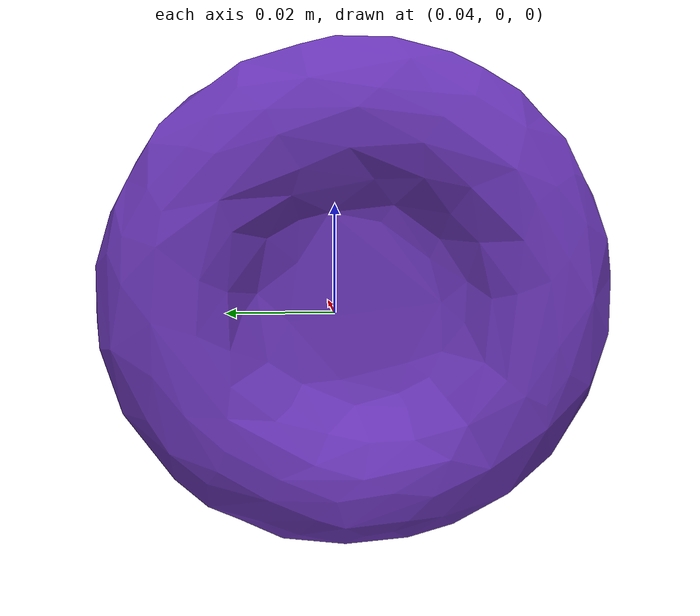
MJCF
<mujoco model="top_watertight_tiny">
  <default>
    <default group="2" type="mesh" contype="0" conaffinity="0">
      <geom group="2" type="mesh" contype="0" conaffinity="0"/>
    </default>
    <default group="3" type="mesh">
      <geom group="3" type="mesh"/>
    </default>
  </default>
  <asset>
    <mesh file="top_watertight_tiny.obj"/>
    <mesh file="top_watertight_tiny_collision_0.obj"/>
    <mesh file="top_watertight_tiny_collision_1.obj"/>
    <mesh file="top_watertight_tiny_collision_2.obj"/>
    <mesh file="top_watertight_tiny_collision_3.obj"/>
    <mesh file="top_watertight_tiny_collision_4.obj"/>
    <mesh file="top_watertight_tiny_collision_5.obj"/>
    <mesh file="top_watertight_tiny_collision_6.obj"/>
    <mesh file="top_watertight_tiny_collision_7.obj"/>
    <mesh file="top_watertight_tiny_collision_8.obj"/>
    <mesh file="top_watertight_tiny_collision_9.obj"/>
    <mesh file="top_watertight_tiny_collision_10.obj"/>
    <mesh file="top_watertight_tiny_collision_11.obj"/>
    <mesh file="top_watertight_tiny_collision_12.obj"/>
    <mesh file="top_watertight_tiny_collision_13.obj"/>
    <mesh file="top_watertight_tiny_collision_14.obj"/>
    <mesh file="top_watertight_tiny_collision_15.obj"/>
    <mesh file="top_watertight_tiny_collision_16.obj"/>
    <mesh file="top_watertight_tiny_collision_17.obj"/>
    <mesh file="top_watertight_tiny_collision_18.obj"/>
    <mesh file="top_watertight_tiny_collision_19.obj"/>
    <mesh file="top_watertight_tiny_collision_20.obj"/>
    <mesh file="top_watertight_tiny_collision_21.obj"/>
    <mesh file="top_watertight_tiny_collision_22.obj"/>
    <mesh file="top_watertight_tiny_collision_23.obj"/>
    <mesh file="top_watertight_tiny_collision_24.obj"/>
    <mesh file="top_watertight_tiny_collision_25.obj"/>
    <mesh file="top_watertight_tiny_collision_26.obj"/>
    <mesh file="top_watertight_tiny_collision_27.obj"/>
    <mesh file="top_watertight_tiny_collision_28.obj"/>
    <mesh file="top_watertight_tiny_collision_29.obj"/>
    <mesh file="top_watertight_tiny_collision_30.obj"/>
    <mesh file="top_watertight_tiny_collision_31.obj"/>
    <mesh file="top_watertight_tiny_collision_32.obj"/>
    <mesh file="top_watertight_tiny_collision_33.obj"/>
    <mesh file="top_watertight_tiny_collision_34.obj"/>
    <mesh file="top_watertight_tiny_collision_35.obj"/>
    <mesh file="top_watertight_tiny_collision_36.obj"/>
    <mesh file="top_watertight_tiny_collision_37.obj"/>
    <mesh file="top_watertight_tiny_collision_38.obj"/>
    <mesh file="top_watertight_tiny_collision_39.obj"/>
    <mesh file="top_watertight_tiny_collision_40.obj"/>
    <mesh file="top_watertight_tiny_collision_41.obj"/>
    <mesh file="top_watertight_tiny_collision_42.obj"/>
    <mesh file="top_watertight_tiny_collision_43.obj"/>
    <mesh file="top_watertight_tiny_collision_44.obj"/>
    <mesh file="top_watertight_tiny_collision_45.obj"/>
    <mesh file="top_watertight_tiny_collision_46.obj"/>
    <mesh file="top_watertight_tiny_collision_47.obj"/>
    <mesh file="top_watertight_tiny_collision_48.obj"/>
    <mesh file="top_watertight_tiny_collision_49.obj"/>
    <mesh file="top_watertight_tiny_collision_50.obj"/>
    <mesh file="top_watertight_tiny_collision_51.obj"/>
    <mesh file="top_watertight_tiny_collision_52.obj"/>
    <mesh file="top_watertight_tiny_collision_53.obj"/>
    <mesh file="top_watertight_tiny_collision_54.obj"/>
    <mesh file="top_watertight_tiny_collision_55.obj"/>
    <mesh file="top_watertight_tiny_collision_56.obj"/>
    <mesh file="top_watertight_tiny_collision_57.obj"/>
    <mesh file="top_watertight_tiny_collision_58.obj"/>
    <mesh file="top_watertight_tiny_collision_59.obj"/>
    <mesh file="top_watertight_tiny_collision_60.obj"/>
    <mesh file="top_watertight_tiny_collision_61.obj"/>
    <mesh file="top_watertight_tiny_collision_62.obj"/>
    <mesh file="top_watertight_tiny_collision_63.obj"/>
    <mesh file="top_watertight_tiny_collision_64.obj"/>
    <mesh file="top_watertight_tiny_collision_65.obj"/>
    <mesh file="top_watertight_tiny_collision_66.obj"/>
    <mesh file="top_watertight_tiny_collision_67.obj"/>
    <mesh file="top_watertight_tiny_collision_68.obj"/>
    <mesh file="top_watertight_tiny_collision_69.obj"/>
    <mesh file="top_watertight_tiny_collision_70.obj"/>
    <mesh file="top_watertight_tiny_collision_71.obj"/>
    <mesh file="top_watertight_tiny_collision_72.obj"/>
    <mesh file="top_watertight_tiny_collision_73.obj"/>
    <mesh file="top_watertight_tiny_collision_74.obj"/>
    <mesh file="top_watertight_tiny_collision_75.obj"/>
    <mesh file="top_watertight_tiny_collision_76.obj"/>
    <mesh file="top_watertight_tiny_collision_77.obj"/>
    <mesh file="top_watertight_tiny_collision_78.obj"/>
    <mesh file="top_watertight_tiny_collision_79.obj"/>
    <mesh file="top_watertight_tiny_collision_80.obj"/>
    <mesh file="top_watertight_tiny_collision_81.obj"/>
    <mesh file="top_watertight_tiny_collision_82.obj"/>
    <mesh file="top_watertight_tiny_collision_83.obj"/>
    <mesh file="top_watertight_tiny_collision_84.obj"/>
    <mesh file="top_watertight_tiny_collision_85.obj"/>
    <mesh file="top_watertight_tiny_collision_86.obj"/>
    <mesh file="top_watertight_tiny_collision_87.obj"/>
    <mesh file="top_watertight_tiny_collision_88.obj"/>
    <mesh file="top_watertight_tiny_collision_89.obj"/>
    <mesh file="top_watertight_tiny_collision_90.obj"/>
    <mesh file="top_watertight_tiny_collision_91.obj"/>
    <mesh file="top_watertight_tiny_collision_92.obj"/>
    <mesh file="top_watertight_tiny_collision_93.obj"/>
  </asset>
  <worldbody>
    <body name="top_watertight_tiny">
      <freejoint/>
      <geom mesh="top_watertight_tiny" group="2" type="mesh" rgba="0.4 0.2 0.7 1" contype="0" conaffinity="0"/>
      <geom mesh="top_watertight_tiny_collision_0" rgba="0.8647193783384594 0.33576148085317636 0.4079934941814074 1" group="3" type="mesh"/>
      <geom mesh="top_watertight_tiny_collision_1" rgba="0.528550080328331 0.35766435567508625 0.10188275859030937 1" group="3" type="mesh"/>
      <geom mesh="top_watertight_tiny_collision_2" rgba="0.03384435544304387 0.7320089182326934 0.32427282574452265 1" group="3" type="mesh"/>
      <geom mesh="top_watertight_tiny_collision_3" rgba="0.9440928132375778 0.8330026005480046 0.060374399849493554 1" group="3" type="mesh"/>
      <geom mesh="top_watertight_tiny_collision_4" rgba="0.8093859365646315 0.48419872301530575 0.09471661942208287 1" group="3" type="mesh"/>
      <geom mesh="top_watertight_tiny_collision_5" rgba="0.25114060428213514 0.9963850581718432 0.8771422606535896 1" group="3" type="mesh"/>
      <geom mesh="top_watertight_tiny_collision_6" rgba="0.9228183097813618 0.38894122224042227 0.7916740042872067 1" group="3" type="mesh"/>
      <geom mesh="top_watertight_tiny_collision_7" rgba="0.7093042905231305 0.18651658322473852 0.8777501765767837 1" group="3" type="mesh"/>
      <geom mesh="top_watertight_tiny_collision_8" rgba="0.661569435215574 0.2433233902448877 0.5619440075468588 1" group="3" type="mesh"/>
      <geom mesh="top_watertight_tiny_collision_9" rgba="0.955670300439233 0.7529269733951579 0.9669353928287964 1" group="3" type="mesh"/>
      <geom mesh="top_watertight_tiny_collision_10" rgba="0.1041776657742699 0.32675096686603766 0.373316598992005 1" group="3" type="mesh"/>
      <geom mesh="top_watertight_tiny_collision_11" rgba="0.16620738765355203 0.1907630227101299 0.14385136396500275 1" group="3" type="mesh"/>
      <geom mesh="top_watertight_tiny_collision_12" rgba="0.7034629132441527 0.935782309415103 0.15990943316567197 1" group="3" type="mesh"/>
      <geom mesh="top_watertight_tiny_collision_13" rgba="0.9221730761178841 0.3798553815064316 0.6652052604392171 1" group="3" type="mesh"/>
      <geom mesh="top_watertight_tiny_collision_14" rgba="0.10588604740659457 0.9918725154194769 0.8067958898505273 1" group="3" type="mesh"/>
      <geom mesh="top_watertight_tiny_collision_15" rgba="0.7754279174660884 0.4431806722626427 0.5487353522542817 1" group="3" type="mesh"/>
      <geom mesh="top_watertight_tiny_collision_16" rgba="0.2825218980539137 0.3717540329901148 0.10752382605312294 1" group="3" type="mesh"/>
      <geom mesh="top_watertight_tiny_collision_17" rgba="0.7937588892151363 0.2641538284600089 0.8824772982476524 1" group="3" type="mesh"/>
      <geom mesh="top_watertight_tiny_collision_18" rgba="0.6283304776001755 0.2224088108873784 0.29865914967610896 1" group="3" type="mesh"/>
      <geom mesh="top_watertight_tiny_collision_19" rgba="0.4561152078741697 0.22510582503589316 0.14679389784332175 1" group="3" type="mesh"/>
      <geom mesh="top_watertight_tiny_collision_20" rgba="0.9648325747641612 0.7984308898621152 0.2010238917021745 1" group="3" type="mesh"/>
      <geom mesh="top_watertight_tiny_collision_21" rgba="0.25960451170108056 0.6275813615868565 0.3288140286930109 1" group="3" type="mesh"/>
      <geom mesh="top_watertight_tiny_collision_22" rgba="0.5732446126504561 0.13756324079841054 0.12611974056166086 1" group="3" type="mesh"/>
      <geom mesh="top_watertight_tiny_collision_23" rgba="0.5666153490801499 0.37670848428723436 0.5176152444876752 1" group="3" type="mesh"/>
      <geom mesh="top_watertight_tiny_collision_24" rgba="0.47926577597418407 0.45323160062059076 0.24319942465404198 1" group="3" type="mesh"/>
      <geom mesh="top_watertight_tiny_collision_25" rgba="0.8343730973964236 0.9233363752947646 0.4771575028743318 1" group="3" type="mesh"/>
      <geom mesh="top_watertight_tiny_collision_26" rgba="0.5356048168996326 0.9694826013589976 0.6814628350123108 1" group="3" type="mesh"/>
      <geom mesh="top_watertight_tiny_collision_27" rgba="0.5291326388851241 0.6156527514454352 0.9455192447930247 1" group="3" type="mesh"/>
      <geom mesh="top_watertight_tiny_collision_28" rgba="0.9343719604299673 0.8722191755501639 0.49919941011148206 1" group="3" type="mesh"/>
      <geom mesh="top_watertight_tiny_collision_29" rgba="0.2135082074082595 0.23953771043774197 0.33558412522830083 1" group="3" type="mesh"/>
      <geom mesh="top_watertight_tiny_collision_30" rgba="0.3685257608040955 0.6393118166882751 0.8699391031341503 1" group="3" type="mesh"/>
      <geom mesh="top_watertight_tiny_collision_31" rgba="0.17988231364187224 0.04241260901741606 0.24041204255408566 1" group="3" type="mesh"/>
      <geom mesh="top_watertight_tiny_collision_32" rgba="0.32245952256050736 0.9612520057921484 0.5462339222742242 1" group="3" type="mesh"/>
      <geom mesh="top_watertight_tiny_collision_33" rgba="0.756138207128659 0.368049434206973 0.8079697723603954 1" group="3" type="mesh"/>
      <geom mesh="top_watertight_tiny_collision_34" rgba="0.8340037621123088 0.8103179853208475 0.08716131102136382 1" group="3" type="mesh"/>
      <geom mesh="top_watertight_tiny_collision_35" rgba="0.5892727067203336 0.4568399801779015 0.3650085384039806 1" group="3" type="mesh"/>
      <geom mesh="top_watertight_tiny_collision_36" rgba="0.0309537137910062 0.10340048802585289 0.49238773068860653 1" group="3" type="mesh"/>
      <geom mesh="top_watertight_tiny_collision_37" rgba="0.6804935857977379 0.10801934641952882 0.4953848954625466 1" group="3" type="mesh"/>
      <geom mesh="top_watertight_tiny_collision_38" rgba="0.5464706239909788 0.7278795537140079 0.8769166439527152 1" group="3" type="mesh"/>
      <geom mesh="top_watertight_tiny_collision_39" rgba="0.22275969169406462 0.5823654031154737 0.28882156622473965 1" group="3" type="mesh"/>
      <geom mesh="top_watertight_tiny_collision_40" rgba="0.669036389375991 0.3624492462422282 0.8156857979187241 1" group="3" type="mesh"/>
      <geom mesh="top_watertight_tiny_collision_41" rgba="0.961147326713572 0.7388137878154969 0.47317781755038335 1" group="3" type="mesh"/>
      <geom mesh="top_watertight_tiny_collision_42" rgba="0.5947718881740977 0.5864250574305508 0.05696451408535763 1" group="3" type="mesh"/>
      <geom mesh="top_watertight_tiny_collision_43" rgba="0.8333760147490425 0.7260480031613233 0.4590545208786271 1" group="3" type="mesh"/>
      <geom mesh="top_watertight_tiny_collision_44" rgba="0.9870670681096123 0.6164857411904762 0.9954249315871574 1" group="3" type="mesh"/>
      <geom mesh="top_watertight_tiny_collision_45" rgba="0.12753893307380804 0.29472433887501337 0.1561241548318546 1" group="3" type="mesh"/>
      <geom mesh="top_watertight_tiny_collision_46" rgba="0.6627444355067069 0.6797569789549704 0.23538498933207974 1" group="3" type="mesh"/>
      <geom mesh="top_watertight_tiny_collision_47" rgba="0.9160736911819106 0.5305449853740661 0.08627583804389327 1" group="3" type="mesh"/>
      <geom mesh="top_watertight_tiny_collision_48" rgba="0.8435466219970081 0.5866118618216585 0.773276637945736 1" group="3" type="mesh"/>
      <geom mesh="top_watertight_tiny_collision_49" rgba="0.7412388547423748 0.12668813755023323 0.6848919431350431 1" group="3" type="mesh"/>
      <geom mesh="top_watertight_tiny_collision_50" rgba="0.15480545096577703 0.4982494059763142 0.6948103621324017 1" group="3" type="mesh"/>
      <geom mesh="top_watertight_tiny_collision_51" rgba="0.9385282171347848 0.5898683869515532 0.6758886270751921 1" group="3" type="mesh"/>
      <geom mesh="top_watertight_tiny_collision_52" rgba="0.835091762175315 0.6820298938804074 0.42963405627775464 1" group="3" type="mesh"/>
      <geom mesh="top_watertight_tiny_collision_53" rgba="0.3006596147362205 0.7172584418146251 0.07188595151856325 1" group="3" type="mesh"/>
      <geom mesh="top_watertight_tiny_collision_54" rgba="0.7013862513770573 0.8133358869129828 0.3988906991640846 1" group="3" type="mesh"/>
      <geom mesh="top_watertight_tiny_collision_55" rgba="0.5880681564581569 0.06313992090005549 0.362419068200006 1" group="3" type="mesh"/>
      <geom mesh="top_watertight_tiny_collision_56" rgba="0.8121957433111657 0.03541381340489391 0.1675432879600558 1" group="3" type="mesh"/>
      <geom mesh="top_watertight_tiny_collision_57" rgba="0.6876141426118819 0.12972864501000847 0.21547901149298865 1" group="3" type="mesh"/>
      <geom mesh="top_watertight_tiny_collision_58" rgba="0.22588818386835086 0.32441577256728793 0.8475094018746478 1" group="3" type="mesh"/>
      <geom mesh="top_watertight_tiny_collision_59" rgba="0.22604666433744003 0.825656710712909 0.11575386399097343 1" group="3" type="mesh"/>
      <geom mesh="top_watertight_tiny_collision_60" rgba="0.11739321679016113 0.16931550218464964 0.6213276125864854 1" group="3" type="mesh"/>
      <geom mesh="top_watertight_tiny_collision_61" rgba="0.6898179171256339 0.7712274923340006 0.5481894342650572 1" group="3" type="mesh"/>
      <geom mesh="top_watertight_tiny_collision_62" rgba="0.46816261651646773 0.4432462742743659 0.14772579754445714 1" group="3" type="mesh"/>
      <geom mesh="top_watertight_tiny_collision_63" rgba="0.30929279940379595 0.190603480394266 0.013204108351597132 1" group="3" type="mesh"/>
      <geom mesh="top_watertight_tiny_collision_64" rgba="0.6360061590656916 0.49423767505677074 0.08621964814335814 1" group="3" type="mesh"/>
      <geom mesh="top_watertight_tiny_collision_65" rgba="0.7531951299730278 0.6728190180962146 0.719621408781027 1" group="3" type="mesh"/>
      <geom mesh="top_watertight_tiny_collision_66" rgba="0.7749908101180436 0.9093794903642795 0.7387828409154696 1" group="3" type="mesh"/>
      <geom mesh="top_watertight_tiny_collision_67" rgba="0.3536728511705446 0.45147859509982924 0.7999114647696277 1" group="3" type="mesh"/>
      <geom mesh="top_watertight_tiny_collision_68" rgba="0.7917270496022406 0.3005956446229009 0.5833838930749562 1" group="3" type="mesh"/>
      <geom mesh="top_watertight_tiny_collision_69" rgba="0.4500034839288869 0.15127972070432416 0.6154013843801865 1" group="3" type="mesh"/>
      <geom mesh="top_watertight_tiny_collision_70" rgba="0.8026864405046642 0.9827334773741597 0.4291900561180052 1" group="3" type="mesh"/>
      <geom mesh="top_watertight_tiny_collision_71" rgba="0.5682052580889434 0.7173007424933974 0.8428930408899423 1" group="3" type="mesh"/>
      <geom mesh="top_watertight_tiny_collision_72" rgba="0.5616679042229795 0.299255419568375 0.5854618868248215 1" group="3" type="mesh"/>
      <geom mesh="top_watertight_tiny_collision_73" rgba="0.011060479383962152 0.6149995828374122 0.3866764803731536 1" group="3" type="mesh"/>
      <geom mesh="top_watertight_tiny_collision_74" rgba="0.22257147214839457 0.9051954718850066 0.43734826329028387 1" group="3" type="mesh"/>
      <geom mesh="top_watertight_tiny_collision_75" rgba="0.8254813956522605 0.4737910393568684 0.6208116339925025 1" group="3" type="mesh"/>
      <geom mesh="top_watertight_tiny_collision_76" rgba="0.303656509046349 0.16798320755883678 0.2285590341597008 1" group="3" type="mesh"/>
      <geom mesh="top_watertight_tiny_collision_77" rgba="0.0558260247213197 0.8653119018469271 0.15582672515214924 1" group="3" type="mesh"/>
      <geom mesh="top_watertight_tiny_collision_78" rgba="0.9407523116859547 0.7652630057965336 0.6364949873836567 1" group="3" type="mesh"/>
      <geom mesh="top_watertight_tiny_collision_79" rgba="0.8191611138558741 0.31871200763384333 0.0005006323285894343 1" group="3" type="mesh"/>
      <geom mesh="top_watertight_tiny_collision_80" rgba="0.8448482059969293 0.8888110432155811 0.8161402284511364 1" group="3" type="mesh"/>
      <geom mesh="top_watertight_tiny_collision_81" rgba="0.7537934333946256 0.10741428588822788 0.7477670137175881 1" group="3" type="mesh"/>
      <geom mesh="top_watertight_tiny_collision_82" rgba="0.20200127199249363 0.2765947542437144 0.8637472282500278 1" group="3" type="mesh"/>
      <geom mesh="top_watertight_tiny_collision_83" rgba="0.4286699596330332 0.7463311149664282 0.019369123211877448 1" group="3" type="mesh"/>
      <geom mesh="top_watertight_tiny_collision_84" rgba="0.9402408472849761 0.02731509156740497 0.03667460260500399 1" group="3" type="mesh"/>
      <geom mesh="top_watertight_tiny_collision_85" rgba="0.6534652774546132 0.7848882042784461 0.9486213673415906 1" group="3" type="mesh"/>
      <geom mesh="top_watertight_tiny_collision_86" rgba="0.31583261625080195 0.7495166957462537 0.8206483972729649 1" group="3" type="mesh"/>
      <geom mesh="top_watertight_tiny_collision_87" rgba="0.036569795934272675 0.7844428230485487 0.9994996138033008 1" group="3" type="mesh"/>
      <geom mesh="top_watertight_tiny_collision_88" rgba="0.6579189113315786 0.5433789921003288 0.7748325515957395 1" group="3" type="mesh"/>
      <geom mesh="top_watertight_tiny_collision_89" rgba="0.1961388095106843 0.007149564424364541 0.5016057848704802 1" group="3" type="mesh"/>
      <geom mesh="top_watertight_tiny_collision_90" rgba="0.0004023699936384073 0.38175844305252116 0.0824283343691602 1" group="3" type="mesh"/>
      <geom mesh="top_watertight_tiny_collision_91" rgba="0.6658557497896048 0.1816164155010348 0.9476472342804261 1" group="3" type="mesh"/>
      <geom mesh="top_watertight_tiny_collision_92" rgba="0.8748012386691095 0.23250883060915772 0.9259351945941221 1" group="3" type="mesh"/>
      <geom mesh="top_watertight_tiny_collision_93" rgba="0.020484960782319317 0.05307519133762029 0.8596627708539828 1" group="3" type="mesh"/>
    </body>
  </worldbody>
</mujoco>
